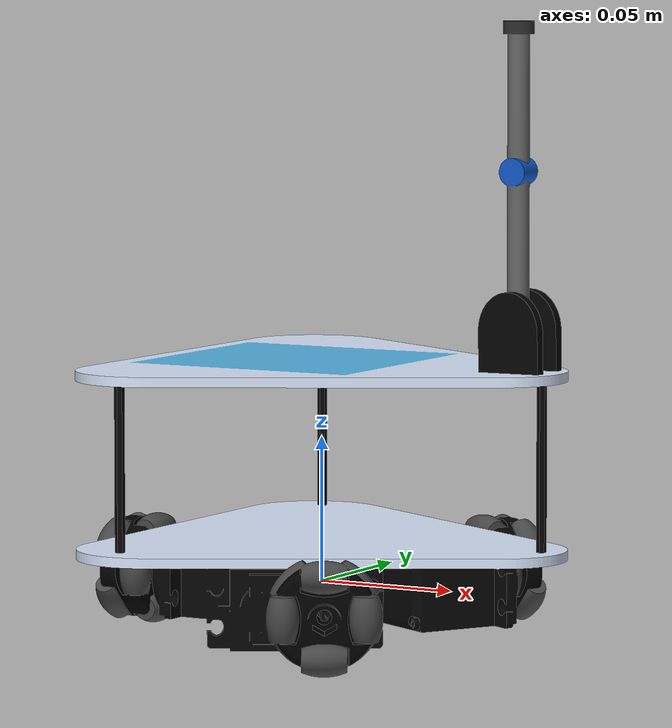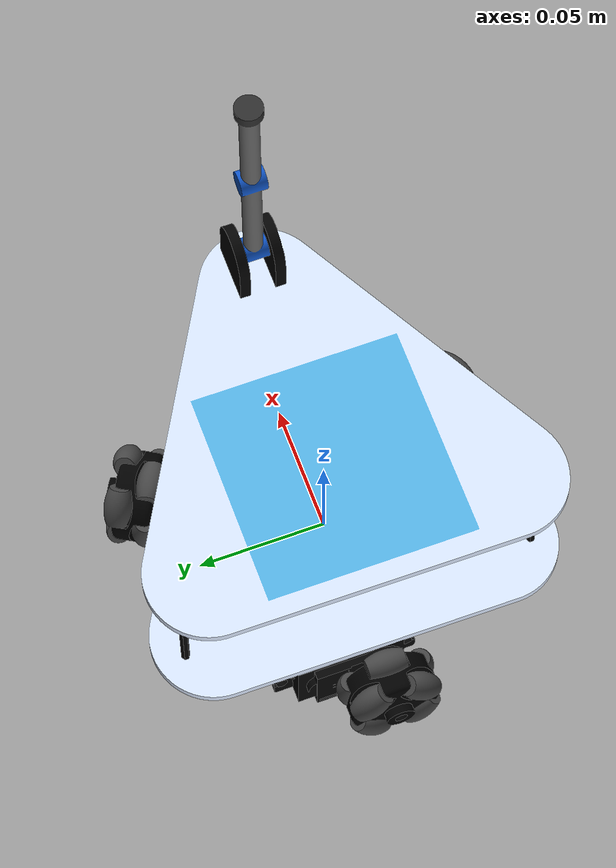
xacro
<?xml version="1.0"?>
<robot xmlns:xacro="http://www.ros.org/wiki/xacro" name="hb_bot">

    <!-- Cylinder Inertia: Ixx = Iyy = m*(3r² + h²)/12, Izz = m*r²/2 -->
    <xacro:macro name="cylinder_inertia" params="m r h">
        <inertia
        ixx="${m*(3*r*r + h*h)/12}" ixy="0"    ixz="0"
        iyy="${m*(3*r*r + h*h)/12}" iyz="0"
        izz="${m*r*r/2}" />
    </xacro:macro>

    <!-- Box Inertia: Ixx = m*(y²+z²)/12, Iyy = m*(x²+z²)/12, Izz = m*(x²+y²)/12 -->
    <xacro:macro name="box_inertia" params="m x y z">
        <inertia
        ixx="${m*(y*y + z*z)/12}" ixy="0"    ixz="0"
        iyy="${m*(x*x + z*z)/12}" iyz="0"
        izz="${m*(x*x + y*y)/12}" />
    </xacro:macro>

    <xacro:macro name="rim_macro" params="name xyz rpy">
        <link name="rim_${name}_link">
        <inertial>
            <origin xyz="0 0 -0.000343"/>
            <mass value="0.00835758"/>
            <inertia ixx="6.63684e-07" ixy="0" ixz="0" iyy="6.63684e-07" iyz="0" izz="9.40333e-07"/>
        </inertial>
        <visual>
            <geometry>
            <mesh filename="file://$(find hb_description)/models/holonomic_bot/meshes/wheels.dae"/>
            </geometry>
        </visual>
        <collision>
            <geometry>
                <sphere radius="0.016"/>
            </geometry>
        </collision>
        </link>
        <joint name="rim_${name}_joint" type="revolute">
        <parent link="base_link"/>
        <child link="rim_${name}_link"/>
        <axis xyz="0 0 1"/>
        <limit effort="1.0" velocity="10.0" lower="-1.79769e+308" upper="1.79769e+308"/>
        <origin xyz="${xyz}" rpy="${rpy}"/>
        </joint>
    </xacro:macro>

    <!-- Root link starts from here -->
    <link name="root_link">
    </link>
    <link name="base_link">
        <visual>
            <origin xyz="0 0 0" rpy="0 0 0" />
            <geometry>
                <mesh filename="file://$(find hb_description)/models/holonomic_bot/meshes/hb_frostbite.dae"/>
            </geometry>
        </visual>

        <collision name="base_link_collision">
            <origin xyz="0 0 0.042" rpy="0 0 0" />
            <geometry>
                <cylinder length="0.064" radius="0.08"/>
            </geometry>
        </collision>

        <inertial>
            <origin xyz="0 0 0" rpy="0 0 0" />
            <mass value="0.15" />
            <xacro:cylinder_inertia m="0.3" r="0.074" h="0.03"/>
        </inertial>

    </link>
    <joint name="root_to_base" type="fixed">
        <parent link="root_link"/>
        <child link="base_link"/>
        <origin xyz="0 0 0" rpy="0 0 0" />
    </joint>

    <link name="chassis_link">
    </link>
    <link name="arm_root_link">
    </link>
    <link name="arm_link_1">
        <visual>
            <origin xyz="0 0 0" rpy="0 0 0" />
            <geometry>
                <mesh filename="file://$(find hb_description)/models/holonomic_bot/meshes/arm_link.dae"/>
            </geometry>
        </visual>
        <collision name="arm_link_1_collision">
            <origin xyz="0 0 0.02472" rpy="0 0 0" />
            <geometry>
                <box size="0.008 0.008 0.06"/>
            </geometry>
        </collision>
        <inertial>
            <origin xyz="0 0 0" rpy="0 0 0" />
            <mass value="0.001" />
            <xacro:cylinder_inertia m="0.001" r="0.025" h="0.05"/>
        </inertial>
    </link>
    <link name="arm_link_2">
        <visual>
            <origin xyz="0 0 0" rpy="0 0 0" />
            <geometry>
                <mesh filename="file://$(find hb_description)/models/holonomic_bot/meshes/arm_elbow.dae"/>
            </geometry>
        </visual>
        <collision name="arm_link_2_collision">
            <origin xyz="0 0 0.025" rpy="0 0 0" />
            <geometry>
                <box size="0.008 0.008 0.05"/>
            </geometry>
        </collision>
        <inertial>
            <origin xyz="0 0 0" rpy="0 0 0" />
            <mass value="0.001" />
            <xacro:cylinder_inertia m="0.001" r="0.025" h="0.05"/>
        </inertial>
    </link>

    <joint name="base_to_chassis" type="fixed">
        <parent link="base_link"/>
        <child link="chassis_link"/>
        <origin xyz="0 0 0.0795" rpy="0 0 0" />
    </joint>

    <joint name="chassis_to_arm_base" type="fixed">
        <parent link="chassis_link"/>
        <child link="arm_root_link"/>
        <origin xyz="0.075 0 0" rpy="0 0 0" />
    </joint>

    <joint name="arm_base" type="continuous">
        <parent link="arm_root_link"/>
        <child link="arm_link_1"/>
        <origin xyz="0 0 0.013" rpy="0 0 0" />
        <axis xyz="0 1 0"/>
        <limit effort="1.0" velocity="2.0" lower="-3.14" upper="3.14"/>
    </joint>

    <joint name="arm_elbow" type="continuous">
        <parent link="arm_link_1"/>
        <child link="arm_link_2"/>
        <origin xyz="0 0 0.05" rpy="0 0 0" />
        <axis xyz="0 1 0"/>
        <limit effort="1.0" velocity="2.0" lower="-3.14" upper="3.14"/>
    </joint>

    <!-- the wheels are here -->
    <xacro:rim_macro name="left" xyz="0.03600001399230441 0.06235382099401676 -0.001" rpy="1.570796326794896 0 -0.523599"/>
    <xacro:rim_macro name="right" xyz="0.03600001399230441 -0.06235382099401676 -0.001"  rpy="1.570796326794896 0 0.523599"/>
    <xacro:rim_macro name="back" xyz="-0.072 0 0" rpy="1.570796326794896 0 1.570796326794896"/>

    <gazebo>
        <plugin
        filename="ignition-gazebo-velocity-control-system"
        name="gz::sim::systems::VelocityControl">
        </plugin>

        <plugin filename="ignition-gazebo-joint-state-publisher-system"
        name="ignition::gazebo::systems::JointStatePublisher">
        </plugin>

        <!-- ign topic -t "/model/{bot_name}/joint/arm_base/cmd_vel" -m ignition.msgs.Double -p "data: 10.0" -->
        <plugin filename="ignition-gazebo-joint-controller-system"
        name="gz::sim::systems::JointController">
        <joint_name>arm_base</joint_name>
        </plugin>

        <plugin filename="ignition-gazebo-joint-controller-system"
        name="gz::sim::systems::JointController">
        <joint_name>arm_elbow</joint_name>
        </plugin>

    </gazebo>

</robot>
